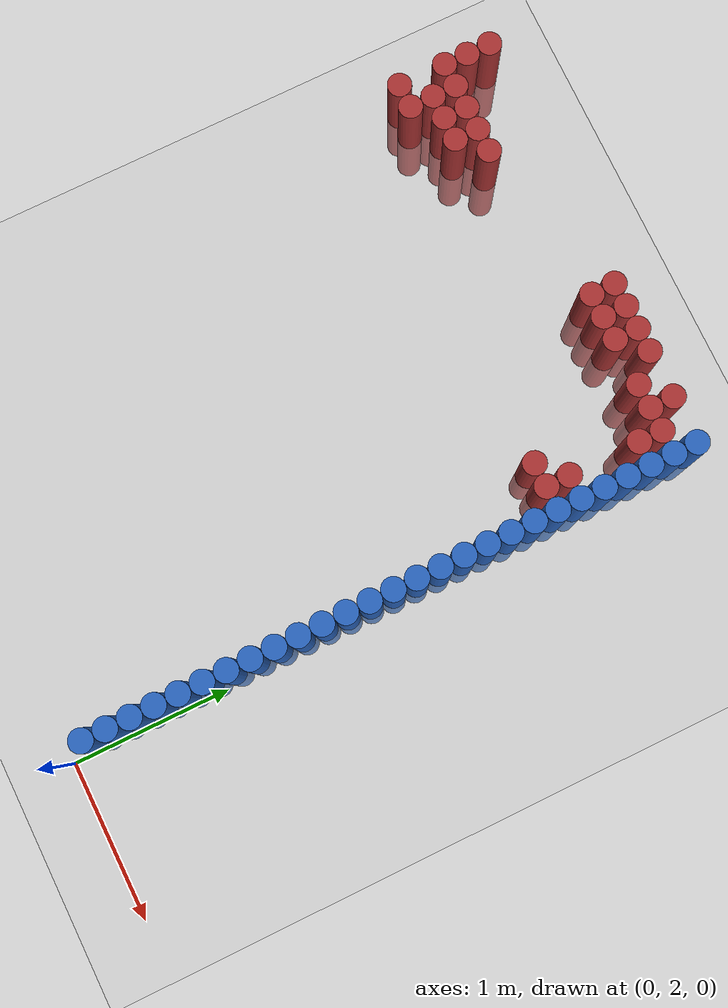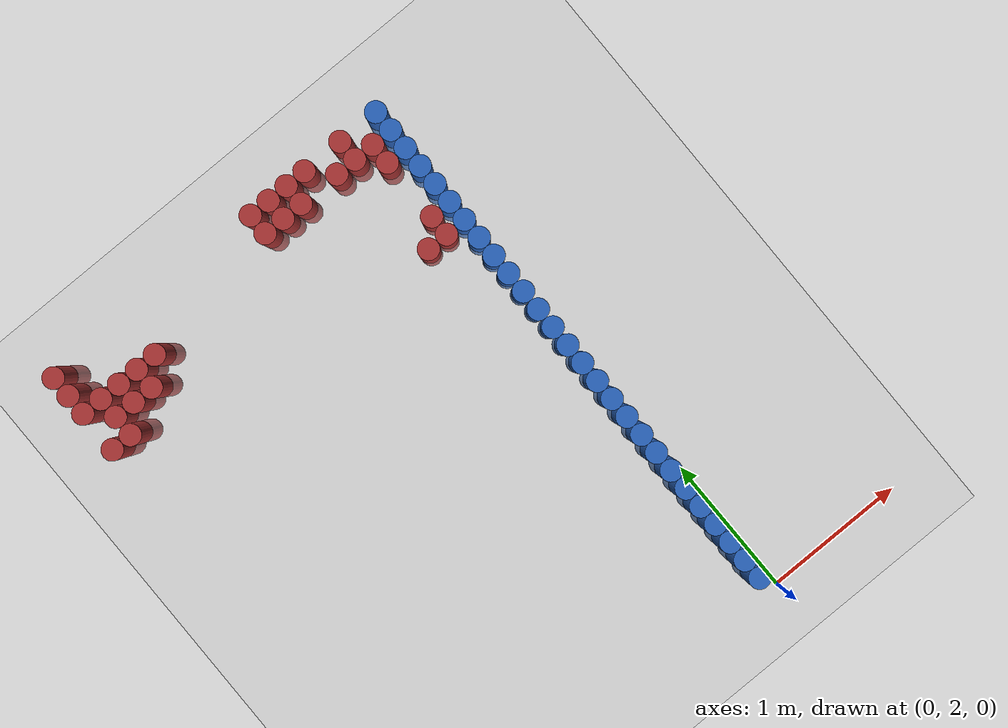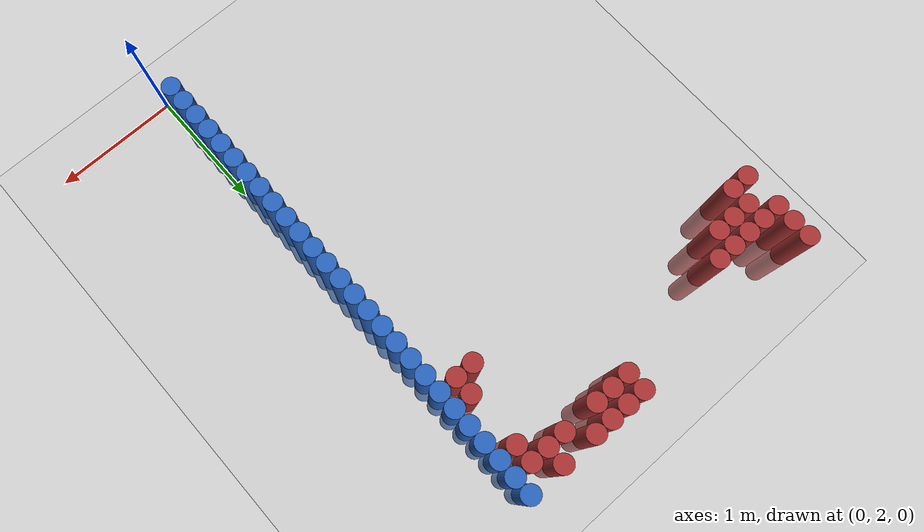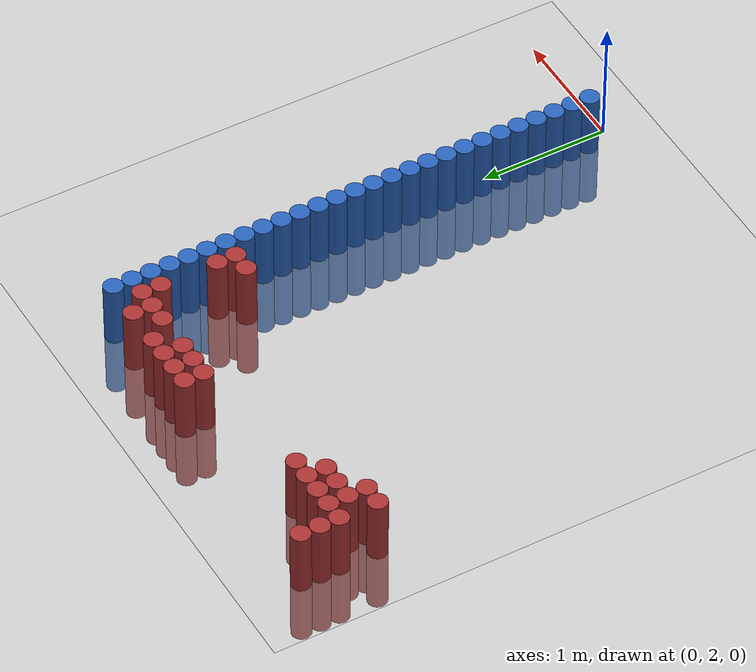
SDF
<sdf version="1.6">
 <world name="default">
  <model name="ground_plane">
   <static>1</static>
   <link name="link">
    <collision name="collision">
     <geometry><plane><normal>0 0 1</normal><size>100 100</size></plane></geometry>
     <surface><friction><ode><mu>100</mu><mu2>50</mu2></ode></friction></surface>
    </collision>
    <visual name="visual">
     <cast_shadows>0</cast_shadows>
     <geometry><plane><normal>0 0 1</normal><size>100 100</size></plane></geometry>
     <material>
      <script><uri>file://media/materials/scripts/gazebo.material</uri><name>Gazebo/Grey</name></script>
     </material>
    </visual>
   </link>
  </model>
  <model name="unit_cylinder_56">
   <static>1</static>
   <pose>-0.075000 2.175000 0.000000 0.000000 0.000000 0.000000</pose>
   <link name="link">
    <inertial>
     <mass>1</mass>
     <inertia><ixx>0.145833</ixx><ixy>0</ixy><ixz>0</ixz><iyy>0.145833</iyy><iyz>0</iyz><izz>0.125</izz></inertia>
    </inertial>
    <collision name="collision">
     <geometry><cylinder><radius>0.075000</radius><length>1</length></cylinder></geometry>
    </collision>
    <visual name="visual">
     <geometry><cylinder><radius>0.075000</radius><length>1</length></cylinder></geometry>
     <material>
      <ambient>0.152000 0.379000 0.720000 1</ambient>
      <diffuse>0.152000 0.379000 0.720000 1</diffuse>
     </material>
     <material>
      <script><name>Gazebo/Grey</name><uri>file://media/materials/scripts/gazebo.material</uri></script>
     </material>
    </visual>
   </link>
  </model>
  <model name="unit_cylinder_58">
   <static>1</static>
   <pose>-0.075000 2.325000 0.000000 0.000000 0.000000 0.000000</pose>
   <link name="link">
    <inertial>
     <mass>1</mass>
     <inertia><ixx>0.145833</ixx><ixy>0</ixy><ixz>0</ixz><iyy>0.145833</iyy><iyz>0</iyz><izz>0.125</izz></inertia>
    </inertial>
    <collision name="collision">
     <geometry><cylinder><radius>0.075000</radius><length>1</length></cylinder></geometry>
    </collision>
    <visual name="visual">
     <geometry><cylinder><radius>0.075000</radius><length>1</length></cylinder></geometry>
     <material>
      <ambient>0.152000 0.379000 0.720000 1</ambient>
      <diffuse>0.152000 0.379000 0.720000 1</diffuse>
     </material>
     <material>
      <script><name>Gazebo/Grey</name><uri>file://media/materials/scripts/gazebo.material</uri></script>
     </material>
    </visual>
   </link>
  </model>
  <model name="unit_cylinder_60">
   <static>1</static>
   <pose>-0.075000 2.475000 0.000000 0.000000 0.000000 0.000000</pose>
   <link name="link">
    <inertial>
     <mass>1</mass>
     <inertia><ixx>0.145833</ixx><ixy>0</ixy><ixz>0</ixz><iyy>0.145833</iyy><iyz>0</iyz><izz>0.125</izz></inertia>
    </inertial>
    <collision name="collision">
     <geometry><cylinder><radius>0.075000</radius><length>1</length></cylinder></geometry>
    </collision>
    <visual name="visual">
     <geometry><cylinder><radius>0.075000</radius><length>1</length></cylinder></geometry>
     <material>
      <ambient>0.152000 0.379000 0.720000 1</ambient>
      <diffuse>0.152000 0.379000 0.720000 1</diffuse>
     </material>
     <material>
      <script><name>Gazebo/Grey</name><uri>file://media/materials/scripts/gazebo.material</uri></script>
     </material>
    </visual>
   </link>
  </model>
  <model name="unit_cylinder_62">
   <static>1</static>
   <pose>-0.075000 2.625000 0.000000 0.000000 0.000000 0.000000</pose>
   <link name="link">
    <inertial>
     <mass>1</mass>
     <inertia><ixx>0.145833</ixx><ixy>0</ixy><ixz>0</ixz><iyy>0.145833</iyy><iyz>0</iyz><izz>0.125</izz></inertia>
    </inertial>
    <collision name="collision">
     <geometry><cylinder><radius>0.075000</radius><length>1</length></cylinder></geometry>
    </collision>
    <visual name="visual">
     <geometry><cylinder><radius>0.075000</radius><length>1</length></cylinder></geometry>
     <material>
      <ambient>0.152000 0.379000 0.720000 1</ambient>
      <diffuse>0.152000 0.379000 0.720000 1</diffuse>
     </material>
     <material>
      <script><name>Gazebo/Grey</name><uri>file://media/materials/scripts/gazebo.material</uri></script>
     </material>
    </visual>
   </link>
  </model>
  <model name="unit_cylinder_64">
   <static>1</static>
   <pose>-0.075000 2.775000 0.000000 0.000000 0.000000 0.000000</pose>
   <link name="link">
    <inertial>
     <mass>1</mass>
     <inertia><ixx>0.145833</ixx><ixy>0</ixy><ixz>0</ixz><iyy>0.145833</iyy><iyz>0</iyz><izz>0.125</izz></inertia>
    </inertial>
    <collision name="collision">
     <geometry><cylinder><radius>0.075000</radius><length>1</length></cylinder></geometry>
    </collision>
    <visual name="visual">
     <geometry><cylinder><radius>0.075000</radius><length>1</length></cylinder></geometry>
     <material>
      <ambient>0.152000 0.379000 0.720000 1</ambient>
      <diffuse>0.152000 0.379000 0.720000 1</diffuse>
     </material>
     <material>
      <script><name>Gazebo/Grey</name><uri>file://media/materials/scripts/gazebo.material</uri></script>
     </material>
    </visual>
   </link>
  </model>
  <model name="unit_cylinder_66">
   <static>1</static>
   <pose>-0.075000 2.925000 0.000000 0.000000 0.000000 0.000000</pose>
   <link name="link">
    <inertial>
     <mass>1</mass>
     <inertia><ixx>0.145833</ixx><ixy>0</ixy><ixz>0</ixz><iyy>0.145833</iyy><iyz>0</iyz><izz>0.125</izz></inertia>
    </inertial>
    <collision name="collision">
     <geometry><cylinder><radius>0.075000</radius><length>1</length></cylinder></geometry>
    </collision>
    <visual name="visual">
     <geometry><cylinder><radius>0.075000</radius><length>1</length></cylinder></geometry>
     <material>
      <ambient>0.152000 0.379000 0.720000 1</ambient>
      <diffuse>0.152000 0.379000 0.720000 1</diffuse>
     </material>
     <material>
      <script><name>Gazebo/Grey</name><uri>file://media/materials/scripts/gazebo.material</uri></script>
     </material>
    </visual>
   </link>
  </model>
  <model name="unit_cylinder_68">
   <static>1</static>
   <pose>-0.075000 3.075000 0.000000 0.000000 0.000000 0.000000</pose>
   <link name="link">
    <inertial>
     <mass>1</mass>
     <inertia><ixx>0.145833</ixx><ixy>0</ixy><ixz>0</ixz><iyy>0.145833</iyy><iyz>0</iyz><izz>0.125</izz></inertia>
    </inertial>
    <collision name="collision">
     <geometry><cylinder><radius>0.075000</radius><length>1</length></cylinder></geometry>
    </collision>
    <visual name="visual">
     <geometry><cylinder><radius>0.075000</radius><length>1</length></cylinder></geometry>
     <material>
      <ambient>0.152000 0.379000 0.720000 1</ambient>
      <diffuse>0.152000 0.379000 0.720000 1</diffuse>
     </material>
     <material>
      <script><name>Gazebo/Grey</name><uri>file://media/materials/scripts/gazebo.material</uri></script>
     </material>
    </visual>
   </link>
  </model>
  <model name="unit_cylinder_70">
   <static>1</static>
   <pose>-0.075000 3.225000 0.000000 0.000000 0.000000 0.000000</pose>
   <link name="link">
    <inertial>
     <mass>1</mass>
     <inertia><ixx>0.145833</ixx><ixy>0</ixy><ixz>0</ixz><iyy>0.145833</iyy><iyz>0</iyz><izz>0.125</izz></inertia>
    </inertial>
    <collision name="collision">
     <geometry><cylinder><radius>0.075000</radius><length>1</length></cylinder></geometry>
    </collision>
    <visual name="visual">
     <geometry><cylinder><radius>0.075000</radius><length>1</length></cylinder></geometry>
     <material>
      <ambient>0.152000 0.379000 0.720000 1</ambient>
      <diffuse>0.152000 0.379000 0.720000 1</diffuse>
     </material>
     <material>
      <script><name>Gazebo/Grey</name><uri>file://media/materials/scripts/gazebo.material</uri></script>
     </material>
    </visual>
   </link>
  </model>
  <model name="unit_cylinder_72">
   <static>1</static>
   <pose>-0.075000 3.375000 0.000000 0.000000 0.000000 0.000000</pose>
   <link name="link">
    <inertial>
     <mass>1</mass>
     <inertia><ixx>0.145833</ixx><ixy>0</ixy><ixz>0</ixz><iyy>0.145833</iyy><iyz>0</iyz><izz>0.125</izz></inertia>
    </inertial>
    <collision name="collision">
     <geometry><cylinder><radius>0.075000</radius><length>1</length></cylinder></geometry>
    </collision>
    <visual name="visual">
     <geometry><cylinder><radius>0.075000</radius><length>1</length></cylinder></geometry>
     <material>
      <ambient>0.152000 0.379000 0.720000 1</ambient>
      <diffuse>0.152000 0.379000 0.720000 1</diffuse>
     </material>
     <material>
      <script><name>Gazebo/Grey</name><uri>file://media/materials/scripts/gazebo.material</uri></script>
     </material>
    </visual>
   </link>
  </model>
  <model name="unit_cylinder_74">
   <static>1</static>
   <pose>-0.075000 3.525000 0.000000 0.000000 0.000000 0.000000</pose>
   <link name="link">
    <inertial>
     <mass>1</mass>
     <inertia><ixx>0.145833</ixx><ixy>0</ixy><ixz>0</ixz><iyy>0.145833</iyy><iyz>0</iyz><izz>0.125</izz></inertia>
    </inertial>
    <collision name="collision">
     <geometry><cylinder><radius>0.075000</radius><length>1</length></cylinder></geometry>
    </collision>
    <visual name="visual">
     <geometry><cylinder><radius>0.075000</radius><length>1</length></cylinder></geometry>
     <material>
      <ambient>0.152000 0.379000 0.720000 1</ambient>
      <diffuse>0.152000 0.379000 0.720000 1</diffuse>
     </material>
     <material>
      <script><name>Gazebo/Grey</name><uri>file://media/materials/scripts/gazebo.material</uri></script>
     </material>
    </visual>
   </link>
  </model>
  <model name="unit_cylinder_76">
   <static>1</static>
   <pose>-0.075000 3.675000 0.000000 0.000000 0.000000 0.000000</pose>
   <link name="link">
    <inertial>
     <mass>1</mass>
     <inertia><ixx>0.145833</ixx><ixy>0</ixy><ixz>0</ixz><iyy>0.145833</iyy><iyz>0</iyz><izz>0.125</izz></inertia>
    </inertial>
    <collision name="collision">
     <geometry><cylinder><radius>0.075000</radius><length>1</length></cylinder></geometry>
    </collision>
    <visual name="visual">
     <geometry><cylinder><radius>0.075000</radius><length>1</length></cylinder></geometry>
     <material>
      <ambient>0.152000 0.379000 0.720000 1</ambient>
      <diffuse>0.152000 0.379000 0.720000 1</diffuse>
     </material>
     <material>
      <script><name>Gazebo/Grey</name><uri>file://media/materials/scripts/gazebo.material</uri></script>
     </material>
    </visual>
   </link>
  </model>
  <model name="unit_cylinder_78">
   <static>1</static>
   <pose>-0.075000 3.825000 0.000000 0.000000 0.000000 0.000000</pose>
   <link name="link">
    <inertial>
     <mass>1</mass>
     <inertia><ixx>0.145833</ixx><ixy>0</ixy><ixz>0</ixz><iyy>0.145833</iyy><iyz>0</iyz><izz>0.125</izz></inertia>
    </inertial>
    <collision name="collision">
     <geometry><cylinder><radius>0.075000</radius><length>1</length></cylinder></geometry>
    </collision>
    <visual name="visual">
     <geometry><cylinder><radius>0.075000</radius><length>1</length></cylinder></geometry>
     <material>
      <ambient>0.152000 0.379000 0.720000 1</ambient>
      <diffuse>0.152000 0.379000 0.720000 1</diffuse>
     </material>
     <material>
      <script><name>Gazebo/Grey</name><uri>file://media/materials/scripts/gazebo.material</uri></script>
     </material>
    </visual>
   </link>
  </model>
  <model name="unit_cylinder_80">
   <static>1</static>
   <pose>-0.075000 3.975000 0.000000 0.000000 0.000000 0.000000</pose>
   <link name="link">
    <inertial>
     <mass>1</mass>
     <inertia><ixx>0.145833</ixx><ixy>0</ixy><ixz>0</ixz><iyy>0.145833</iyy><iyz>0</iyz><izz>0.125</izz></inertia>
    </inertial>
    <collision name="collision">
     <geometry><cylinder><radius>0.075000</radius><length>1</length></cylinder></geometry>
    </collision>
    <visual name="visual">
     <geometry><cylinder><radius>0.075000</radius><length>1</length></cylinder></geometry>
     <material>
      <ambient>0.152000 0.379000 0.720000 1</ambient>
      <diffuse>0.152000 0.379000 0.720000 1</diffuse>
     </material>
     <material>
      <script><name>Gazebo/Grey</name><uri>file://media/materials/scripts/gazebo.material</uri></script>
     </material>
    </visual>
   </link>
  </model>
  <model name="unit_cylinder_82">
   <static>1</static>
   <pose>-0.075000 4.125000 0.000000 0.000000 0.000000 0.000000</pose>
   <link name="link">
    <inertial>
     <mass>1</mass>
     <inertia><ixx>0.145833</ixx><ixy>0</ixy><ixz>0</ixz><iyy>0.145833</iyy><iyz>0</iyz><izz>0.125</izz></inertia>
    </inertial>
    <collision name="collision">
     <geometry><cylinder><radius>0.075000</radius><length>1</length></cylinder></geometry>
    </collision>
    <visual name="visual">
     <geometry><cylinder><radius>0.075000</radius><length>1</length></cylinder></geometry>
     <material>
      <ambient>0.152000 0.379000 0.720000 1</ambient>
      <diffuse>0.152000 0.379000 0.720000 1</diffuse>
     </material>
     <material>
      <script><name>Gazebo/Grey</name><uri>file://media/materials/scripts/gazebo.material</uri></script>
     </material>
    </visual>
   </link>
  </model>
  <model name="unit_cylinder_84">
   <static>1</static>
   <pose>-0.075000 4.275000 0.000000 0.000000 0.000000 0.000000</pose>
   <link name="link">
    <inertial>
     <mass>1</mass>
     <inertia><ixx>0.145833</ixx><ixy>0</ixy><ixz>0</ixz><iyy>0.145833</iyy><iyz>0</iyz><izz>0.125</izz></inertia>
    </inertial>
    <collision name="collision">
     <geometry><cylinder><radius>0.075000</radius><length>1</length></cylinder></geometry>
    </collision>
    <visual name="visual">
     <geometry><cylinder><radius>0.075000</radius><length>1</length></cylinder></geometry>
     <material>
      <ambient>0.152000 0.379000 0.720000 1</ambient>
      <diffuse>0.152000 0.379000 0.720000 1</diffuse>
     </material>
     <material>
      <script><name>Gazebo/Grey</name><uri>file://media/materials/scripts/gazebo.material</uri></script>
     </material>
    </visual>
   </link>
  </model>
  <model name="unit_cylinder_86">
   <static>1</static>
   <pose>-0.075000 4.425000 0.000000 0.000000 0.000000 0.000000</pose>
   <link name="link">
    <inertial>
     <mass>1</mass>
     <inertia><ixx>0.145833</ixx><ixy>0</ixy><ixz>0</ixz><iyy>0.145833</iyy><iyz>0</iyz><izz>0.125</izz></inertia>
    </inertial>
    <collision name="collision">
     <geometry><cylinder><radius>0.075000</radius><length>1</length></cylinder></geometry>
    </collision>
    <visual name="visual">
     <geometry><cylinder><radius>0.075000</radius><length>1</length></cylinder></geometry>
     <material>
      <ambient>0.152000 0.379000 0.720000 1</ambient>
      <diffuse>0.152000 0.379000 0.720000 1</diffuse>
     </material>
     <material>
      <script><name>Gazebo/Grey</name><uri>file://media/materials/scripts/gazebo.material</uri></script>
     </material>
    </visual>
   </link>
  </model>
  <model name="unit_cylinder_88">
   <static>1</static>
   <pose>-0.075000 4.575000 0.000000 0.000000 0.000000 0.000000</pose>
   <link name="link">
    <inertial>
     <mass>1</mass>
     <inertia><ixx>0.145833</ixx><ixy>0</ixy><ixz>0</ixz><iyy>0.145833</iyy><iyz>0</iyz><izz>0.125</izz></inertia>
    </inertial>
    <collision name="collision">
     <geometry><cylinder><radius>0.075000</radius><length>1</length></cylinder></geometry>
    </collision>
    <visual name="visual">
     <geometry><cylinder><radius>0.075000</radius><length>1</length></cylinder></geometry>
     <material>
      <ambient>0.152000 0.379000 0.720000 1</ambient>
      <diffuse>0.152000 0.379000 0.720000 1</diffuse>
     </material>
     <material>
      <script><name>Gazebo/Grey</name><uri>file://media/materials/scripts/gazebo.material</uri></script>
     </material>
    </visual>
   </link>
  </model>
  <model name="unit_cylinder_90">
   <static>1</static>
   <pose>-0.075000 4.725000 0.000000 0.000000 0.000000 0.000000</pose>
   <link name="link">
    <inertial>
     <mass>1</mass>
     <inertia><ixx>0.145833</ixx><ixy>0</ixy><ixz>0</ixz><iyy>0.145833</iyy><iyz>0</iyz><izz>0.125</izz></inertia>
    </inertial>
    <collision name="collision">
     <geometry><cylinder><radius>0.075000</radius><length>1</length></cylinder></geometry>
    </collision>
    <visual name="visual">
     <geometry><cylinder><radius>0.075000</radius><length>1</length></cylinder></geometry>
     <material>
      <ambient>0.152000 0.379000 0.720000 1</ambient>
      <diffuse>0.152000 0.379000 0.720000 1</diffuse>
     </material>
     <material>
      <script><name>Gazebo/Grey</name><uri>file://media/materials/scripts/gazebo.material</uri></script>
     </material>
    </visual>
   </link>
  </model>
  <model name="unit_cylinder_92">
   <static>1</static>
   <pose>-0.075000 4.875000 0.000000 0.000000 0.000000 0.000000</pose>
   <link name="link">
    <inertial>
     <mass>1</mass>
     <inertia><ixx>0.145833</ixx><ixy>0</ixy><ixz>0</ixz><iyy>0.145833</iyy><iyz>0</iyz><izz>0.125</izz></inertia>
    </inertial>
    <collision name="collision">
     <geometry><cylinder><radius>0.075000</radius><length>1</length></cylinder></geometry>
    </collision>
    <visual name="visual">
     <geometry><cylinder><radius>0.075000</radius><length>1</length></cylinder></geometry>
     <material>
      <ambient>0.152000 0.379000 0.720000 1</ambient>
      <diffuse>0.152000 0.379000 0.720000 1</diffuse>
     </material>
     <material>
      <script><name>Gazebo/Grey</name><uri>file://media/materials/scripts/gazebo.material</uri></script>
     </material>
    </visual>
   </link>
  </model>
  <model name="unit_cylinder_94">
   <static>1</static>
   <pose>-0.075000 5.025000 0.000000 0.000000 0.000000 0.000000</pose>
   <link name="link">
    <inertial>
     <mass>1</mass>
     <inertia><ixx>0.145833</ixx><ixy>0</ixy><ixz>0</ixz><iyy>0.145833</iyy><iyz>0</iyz><izz>0.125</izz></inertia>
    </inertial>
    <collision name="collision">
     <geometry><cylinder><radius>0.075000</radius><length>1</length></cylinder></geometry>
    </collision>
    <visual name="visual">
     <geometry><cylinder><radius>0.075000</radius><length>1</length></cylinder></geometry>
     <material>
      <ambient>0.152000 0.379000 0.720000 1</ambient>
      <diffuse>0.152000 0.379000 0.720000 1</diffuse>
     </material>
     <material>
      <script><name>Gazebo/Grey</name><uri>file://media/materials/scripts/gazebo.material</uri></script>
     </material>
    </visual>
   </link>
  </model>
  <model name="unit_cylinder_211">
   <static>1</static>
   <pose>-2.775000 5.475000 0.000000 0.000000 0.000000 0.000000</pose>
   <link name="link">
    <inertial>
     <mass>1</mass>
     <inertia><ixx>0.145833</ixx><ixy>0</ixy><ixz>0</ixz><iyy>0.145833</iyy><iyz>0</iyz><izz>0.125</izz></inertia>
    </inertial>
    <collision name="collision">
     <geometry><cylinder><radius>0.075000</radius><length>1</length></cylinder></geometry>
    </collision>
    <visual name="visual">
     <geometry><cylinder><radius>0.075000</radius><length>1</length></cylinder></geometry>
     <material>
      <ambient>0.648000 0.192000 0.192000 1</ambient>
      <diffuse>0.648000 0.192000 0.192000 1</diffuse>
     </material>
     <material>
      <script><name>Gazebo/Grey</name><uri>file://media/materials/scripts/gazebo.material</uri></script>
     </material>
    </visual>
   </link>
  </model>
  <model name="unit_cylinder_212">
   <static>1</static>
   <pose>-2.775000 5.775000 0.000000 0.000000 0.000000 0.000000</pose>
   <link name="link">
    <inertial>
     <mass>1</mass>
     <inertia><ixx>0.145833</ixx><ixy>0</ixy><ixz>0</ixz><iyy>0.145833</iyy><iyz>0</iyz><izz>0.125</izz></inertia>
    </inertial>
    <collision name="collision">
     <geometry><cylinder><radius>0.075000</radius><length>1</length></cylinder></geometry>
    </collision>
    <visual name="visual">
     <geometry><cylinder><radius>0.075000</radius><length>1</length></cylinder></geometry>
     <material>
      <ambient>0.648000 0.192000 0.192000 1</ambient>
      <diffuse>0.648000 0.192000 0.192000 1</diffuse>
     </material>
     <material>
      <script><name>Gazebo/Grey</name><uri>file://media/materials/scripts/gazebo.material</uri></script>
     </material>
    </visual>
   </link>
  </model>
  <model name="unit_cylinder_213">
   <static>1</static>
   <pose>-2.775000 5.925000 0.000000 0.000000 0.000000 0.000000</pose>
   <link name="link">
    <inertial>
     <mass>1</mass>
     <inertia><ixx>0.145833</ixx><ixy>0</ixy><ixz>0</ixz><iyy>0.145833</iyy><iyz>0</iyz><izz>0.125</izz></inertia>
    </inertial>
    <collision name="collision">
     <geometry><cylinder><radius>0.075000</radius><length>1</length></cylinder></geometry>
    </collision>
    <visual name="visual">
     <geometry><cylinder><radius>0.075000</radius><length>1</length></cylinder></geometry>
     <material>
      <ambient>0.648000 0.192000 0.192000 1</ambient>
      <diffuse>0.648000 0.192000 0.192000 1</diffuse>
     </material>
     <material>
      <script><name>Gazebo/Grey</name><uri>file://media/materials/scripts/gazebo.material</uri></script>
     </material>
    </visual>
   </link>
  </model>
  <model name="unit_cylinder_214">
   <static>1</static>
   <pose>-2.775000 6.075000 0.000000 0.000000 0.000000 0.000000</pose>
   <link name="link">
    <inertial>
     <mass>1</mass>
     <inertia><ixx>0.145833</ixx><ixy>0</ixy><ixz>0</ixz><iyy>0.145833</iyy><iyz>0</iyz><izz>0.125</izz></inertia>
    </inertial>
    <collision name="collision">
     <geometry><cylinder><radius>0.075000</radius><length>1</length></cylinder></geometry>
    </collision>
    <visual name="visual">
     <geometry><cylinder><radius>0.075000</radius><length>1</length></cylinder></geometry>
     <material>
      <ambient>0.648000 0.192000 0.192000 1</ambient>
      <diffuse>0.648000 0.192000 0.192000 1</diffuse>
     </material>
     <material>
      <script><name>Gazebo/Grey</name><uri>file://media/materials/scripts/gazebo.material</uri></script>
     </material>
    </visual>
   </link>
  </model>
  <model name="unit_cylinder_219">
   <static>1</static>
   <pose>-2.625000 5.475000 0.000000 0.000000 0.000000 0.000000</pose>
   <link name="link">
    <inertial>
     <mass>1</mass>
     <inertia><ixx>0.145833</ixx><ixy>0</ixy><ixz>0</ixz><iyy>0.145833</iyy><iyz>0</iyz><izz>0.125</izz></inertia>
    </inertial>
    <collision name="collision">
     <geometry><cylinder><radius>0.075000</radius><length>1</length></cylinder></geometry>
    </collision>
    <visual name="visual">
     <geometry><cylinder><radius>0.075000</radius><length>1</length></cylinder></geometry>
     <material>
      <ambient>0.648000 0.192000 0.192000 1</ambient>
      <diffuse>0.648000 0.192000 0.192000 1</diffuse>
     </material>
     <material>
      <script><name>Gazebo/Grey</name><uri>file://media/materials/scripts/gazebo.material</uri></script>
     </material>
    </visual>
   </link>
  </model>
  <model name="unit_cylinder_220">
   <static>1</static>
   <pose>-2.625000 5.625000 0.000000 0.000000 0.000000 0.000000</pose>
   <link name="link">
    <inertial>
     <mass>1</mass>
     <inertia><ixx>0.145833</ixx><ixy>0</ixy><ixz>0</ixz><iyy>0.145833</iyy><iyz>0</iyz><izz>0.125</izz></inertia>
    </inertial>
    <collision name="collision">
     <geometry><cylinder><radius>0.075000</radius><length>1</length></cylinder></geometry>
    </collision>
    <visual name="visual">
     <geometry><cylinder><radius>0.075000</radius><length>1</length></cylinder></geometry>
     <material>
      <ambient>0.648000 0.192000 0.192000 1</ambient>
      <diffuse>0.648000 0.192000 0.192000 1</diffuse>
     </material>
     <material>
      <script><name>Gazebo/Grey</name><uri>file://media/materials/scripts/gazebo.material</uri></script>
     </material>
    </visual>
   </link>
  </model>
  <model name="unit_cylinder_221">
   <static>1</static>
   <pose>-2.625000 5.775000 0.000000 0.000000 0.000000 0.000000</pose>
   <link name="link">
    <inertial>
     <mass>1</mass>
     <inertia><ixx>0.145833</ixx><ixy>0</ixy><ixz>0</ixz><iyy>0.145833</iyy><iyz>0</iyz><izz>0.125</izz></inertia>
    </inertial>
    <collision name="collision">
     <geometry><cylinder><radius>0.075000</radius><length>1</length></cylinder></geometry>
    </collision>
    <visual name="visual">
     <geometry><cylinder><radius>0.075000</radius><length>1</length></cylinder></geometry>
     <material>
      <ambient>0.648000 0.192000 0.192000 1</ambient>
      <diffuse>0.648000 0.192000 0.192000 1</diffuse>
     </material>
     <material>
      <script><name>Gazebo/Grey</name><uri>file://media/materials/scripts/gazebo.material</uri></script>
     </material>
    </visual>
   </link>
  </model>
  <model name="unit_cylinder_224">
   <static>1</static>
   <pose>-2.475000 5.625000 0.000000 0.000000 0.000000 0.000000</pose>
   <link name="link">
    <inertial>
     <mass>1</mass>
     <inertia><ixx>0.145833</ixx><ixy>0</ixy><ixz>0</ixz><iyy>0.145833</iyy><iyz>0</iyz><izz>0.125</izz></inertia>
    </inertial>
    <collision name="collision">
     <geometry><cylinder><radius>0.075000</radius><length>1</length></cylinder></geometry>
    </collision>
    <visual name="visual">
     <geometry><cylinder><radius>0.075000</radius><length>1</length></cylinder></geometry>
     <material>
      <ambient>0.648000 0.192000 0.192000 1</ambient>
      <diffuse>0.648000 0.192000 0.192000 1</diffuse>
     </material>
     <material>
      <script><name>Gazebo/Grey</name><uri>file://media/materials/scripts/gazebo.material</uri></script>
     </material>
    </visual>
   </link>
  </model>
  <model name="unit_cylinder_225">
   <static>1</static>
   <pose>-2.475000 5.775000 0.000000 0.000000 0.000000 0.000000</pose>
   <link name="link">
    <inertial>
     <mass>1</mass>
     <inertia><ixx>0.145833</ixx><ixy>0</ixy><ixz>0</ixz><iyy>0.145833</iyy><iyz>0</iyz><izz>0.125</izz></inertia>
    </inertial>
    <collision name="collision">
     <geometry><cylinder><radius>0.075000</radius><length>1</length></cylinder></geometry>
    </collision>
    <visual name="visual">
     <geometry><cylinder><radius>0.075000</radius><length>1</length></cylinder></geometry>
     <material>
      <ambient>0.648000 0.192000 0.192000 1</ambient>
      <diffuse>0.648000 0.192000 0.192000 1</diffuse>
     </material>
     <material>
      <script><name>Gazebo/Grey</name><uri>file://media/materials/scripts/gazebo.material</uri></script>
     </material>
    </visual>
   </link>
  </model>
  <model name="unit_cylinder_228">
   <static>1</static>
   <pose>-2.325000 5.625000 0.000000 0.000000 0.000000 0.000000</pose>
   <link name="link">
    <inertial>
     <mass>1</mass>
     <inertia><ixx>0.145833</ixx><ixy>0</ixy><ixz>0</ixz><iyy>0.145833</iyy><iyz>0</iyz><izz>0.125</izz></inertia>
    </inertial>
    <collision name="collision">
     <geometry><cylinder><radius>0.075000</radius><length>1</length></cylinder></geometry>
    </collision>
    <visual name="visual">
     <geometry><cylinder><radius>0.075000</radius><length>1</length></cylinder></geometry>
     <material>
      <ambient>0.648000 0.192000 0.192000 1</ambient>
      <diffuse>0.648000 0.192000 0.192000 1</diffuse>
     </material>
     <material>
      <script><name>Gazebo/Grey</name><uri>file://media/materials/scripts/gazebo.material</uri></script>
     </material>
    </visual>
   </link>
  </model>
  <model name="unit_cylinder_229">
   <static>1</static>
   <pose>-2.325000 5.775000 0.000000 0.000000 0.000000 0.000000</pose>
   <link name="link">
    <inertial>
     <mass>1</mass>
     <inertia><ixx>0.145833</ixx><ixy>0</ixy><ixz>0</ixz><iyy>0.145833</iyy><iyz>0</iyz><izz>0.125</izz></inertia>
    </inertial>
    <collision name="collision">
     <geometry><cylinder><radius>0.075000</radius><length>1</length></cylinder></geometry>
    </collision>
    <visual name="visual">
     <geometry><cylinder><radius>0.075000</radius><length>1</length></cylinder></geometry>
     <material>
      <ambient>0.648000 0.192000 0.192000 1</ambient>
      <diffuse>0.648000 0.192000 0.192000 1</diffuse>
     </material>
     <material>
      <script><name>Gazebo/Grey</name><uri>file://media/materials/scripts/gazebo.material</uri></script>
     </material>
    </visual>
   </link>
  </model>
  <model name="unit_cylinder_236">
   <static>1</static>
   <pose>-2.175000 5.775000 0.000000 0.000000 0.000000 0.000000</pose>
   <link name="link">
    <inertial>
     <mass>1</mass>
     <inertia><ixx>0.145833</ixx><ixy>0</ixy><ixz>0</ixz><iyy>0.145833</iyy><iyz>0</iyz><izz>0.125</izz></inertia>
    </inertial>
    <collision name="collision">
     <geometry><cylinder><radius>0.075000</radius><length>1</length></cylinder></geometry>
    </collision>
    <visual name="visual">
     <geometry><cylinder><radius>0.075000</radius><length>1</length></cylinder></geometry>
     <material>
      <ambient>0.648000 0.192000 0.192000 1</ambient>
      <diffuse>0.648000 0.192000 0.192000 1</diffuse>
     </material>
     <material>
      <script><name>Gazebo/Grey</name><uri>file://media/materials/scripts/gazebo.material</uri></script>
     </material>
    </visual>
   </link>
  </model>
  <model name="unit_cylinder_278">
   <static>1</static>
   <pose>-1.125000 5.925000 0.000000 0.000000 0.000000 0.000000</pose>
   <link name="link">
    <inertial>
     <mass>1</mass>
     <inertia><ixx>0.145833</ixx><ixy>0</ixy><ixz>0</ixz><iyy>0.145833</iyy><iyz>0</iyz><izz>0.125</izz></inertia>
    </inertial>
    <collision name="collision">
     <geometry><cylinder><radius>0.075000</radius><length>1</length></cylinder></geometry>
    </collision>
    <visual name="visual">
     <geometry><cylinder><radius>0.075000</radius><length>1</length></cylinder></geometry>
     <material>
      <ambient>0.648000 0.192000 0.192000 1</ambient>
      <diffuse>0.648000 0.192000 0.192000 1</diffuse>
     </material>
     <material>
      <script><name>Gazebo/Grey</name><uri>file://media/materials/scripts/gazebo.material</uri></script>
     </material>
    </visual>
   </link>
  </model>
  <model name="unit_cylinder_279">
   <static>1</static>
   <pose>-1.125000 6.075000 0.000000 0.000000 0.000000 0.000000</pose>
   <link name="link">
    <inertial>
     <mass>1</mass>
     <inertia><ixx>0.145833</ixx><ixy>0</ixy><ixz>0</ixz><iyy>0.145833</iyy><iyz>0</iyz><izz>0.125</izz></inertia>
    </inertial>
    <collision name="collision">
     <geometry><cylinder><radius>0.075000</radius><length>1</length></cylinder></geometry>
    </collision>
    <visual name="visual">
     <geometry><cylinder><radius>0.075000</radius><length>1</length></cylinder></geometry>
     <material>
      <ambient>0.648000 0.192000 0.192000 1</ambient>
      <diffuse>0.648000 0.192000 0.192000 1</diffuse>
     </material>
     <material>
      <script><name>Gazebo/Grey</name><uri>file://media/materials/scripts/gazebo.material</uri></script>
     </material>
    </visual>
   </link>
  </model>
  <model name="unit_cylinder_284">
   <static>1</static>
   <pose>-0.975000 5.925000 0.000000 0.000000 0.000000 0.000000</pose>
   <link name="link">
    <inertial>
     <mass>1</mass>
     <inertia><ixx>0.145833</ixx><ixy>0</ixy><ixz>0</ixz><iyy>0.145833</iyy><iyz>0</iyz><izz>0.125</izz></inertia>
    </inertial>
    <collision name="collision">
     <geometry><cylinder><radius>0.075000</radius><length>1</length></cylinder></geometry>
    </collision>
    <visual name="visual">
     <geometry><cylinder><radius>0.075000</radius><length>1</length></cylinder></geometry>
     <material>
      <ambient>0.648000 0.192000 0.192000 1</ambient>
      <diffuse>0.648000 0.192000 0.192000 1</diffuse>
     </material>
     <material>
      <script><name>Gazebo/Grey</name><uri>file://media/materials/scripts/gazebo.material</uri></script>
     </material>
    </visual>
   </link>
  </model>
  <model name="unit_cylinder_285">
   <static>1</static>
   <pose>-0.975000 6.075000 0.000000 0.000000 0.000000 0.000000</pose>
   <link name="link">
    <inertial>
     <mass>1</mass>
     <inertia><ixx>0.145833</ixx><ixy>0</ixy><ixz>0</ixz><iyy>0.145833</iyy><iyz>0</iyz><izz>0.125</izz></inertia>
    </inertial>
    <collision name="collision">
     <geometry><cylinder><radius>0.075000</radius><length>1</length></cylinder></geometry>
    </collision>
    <visual name="visual">
     <geometry><cylinder><radius>0.075000</radius><length>1</length></cylinder></geometry>
     <material>
      <ambient>0.648000 0.192000 0.192000 1</ambient>
      <diffuse>0.648000 0.192000 0.192000 1</diffuse>
     </material>
     <material>
      <script><name>Gazebo/Grey</name><uri>file://media/materials/scripts/gazebo.material</uri></script>
     </material>
    </visual>
   </link>
  </model>
  <model name="unit_cylinder_292">
   <static>1</static>
   <pose>-0.825000 5.925000 0.000000 0.000000 0.000000 0.000000</pose>
   <link name="link">
    <inertial>
     <mass>1</mass>
     <inertia><ixx>0.145833</ixx><ixy>0</ixy><ixz>0</ixz><iyy>0.145833</iyy><iyz>0</iyz><izz>0.125</izz></inertia>
    </inertial>
    <collision name="collision">
     <geometry><cylinder><radius>0.075000</radius><length>1</length></cylinder></geometry>
    </collision>
    <visual name="visual">
     <geometry><cylinder><radius>0.075000</radius><length>1</length></cylinder></geometry>
     <material>
      <ambient>0.648000 0.192000 0.192000 1</ambient>
      <diffuse>0.648000 0.192000 0.192000 1</diffuse>
     </material>
     <material>
      <script><name>Gazebo/Grey</name><uri>file://media/materials/scripts/gazebo.material</uri></script>
     </material>
    </visual>
   </link>
  </model>
  <model name="unit_cylinder_293">
   <static>1</static>
   <pose>-0.825000 6.075000 0.000000 0.000000 0.000000 0.000000</pose>
   <link name="link">
    <inertial>
     <mass>1</mass>
     <inertia><ixx>0.145833</ixx><ixy>0</ixy><ixz>0</ixz><iyy>0.145833</iyy><iyz>0</iyz><izz>0.125</izz></inertia>
    </inertial>
    <collision name="collision">
     <geometry><cylinder><radius>0.075000</radius><length>1</length></cylinder></geometry>
    </collision>
    <visual name="visual">
     <geometry><cylinder><radius>0.075000</radius><length>1</length></cylinder></geometry>
     <material>
      <ambient>0.648000 0.192000 0.192000 1</ambient>
      <diffuse>0.648000 0.192000 0.192000 1</diffuse>
     </material>
     <material>
      <script><name>Gazebo/Grey</name><uri>file://media/materials/scripts/gazebo.material</uri></script>
     </material>
    </visual>
   </link>
  </model>
  <model name="unit_cylinder_302">
   <static>1</static>
   <pose>-0.675000 6.075000 0.000000 0.000000 0.000000 0.000000</pose>
   <link name="link">
    <inertial>
     <mass>1</mass>
     <inertia><ixx>0.145833</ixx><ixy>0</ixy><ixz>0</ixz><iyy>0.145833</iyy><iyz>0</iyz><izz>0.125</izz></inertia>
    </inertial>
    <collision name="collision">
     <geometry><cylinder><radius>0.075000</radius><length>1</length></cylinder></geometry>
    </collision>
    <visual name="visual">
     <geometry><cylinder><radius>0.075000</radius><length>1</length></cylinder></geometry>
     <material>
      <ambient>0.648000 0.192000 0.192000 1</ambient>
      <diffuse>0.648000 0.192000 0.192000 1</diffuse>
     </material>
     <material>
      <script><name>Gazebo/Grey</name><uri>file://media/materials/scripts/gazebo.material</uri></script>
     </material>
    </visual>
   </link>
  </model>
  <model name="unit_cylinder_309">
   <static>1</static>
   <pose>-0.525000 5.925000 0.000000 0.000000 0.000000 0.000000</pose>
   <link name="link">
    <inertial>
     <mass>1</mass>
     <inertia><ixx>0.145833</ixx><ixy>0</ixy><ixz>0</ixz><iyy>0.145833</iyy><iyz>0</iyz><izz>0.125</izz></inertia>
    </inertial>
    <collision name="collision">
     <geometry><cylinder><radius>0.075000</radius><length>1</length></cylinder></geometry>
    </collision>
    <visual name="visual">
     <geometry><cylinder><radius>0.075000</radius><length>1</length></cylinder></geometry>
     <material>
      <ambient>0.648000 0.192000 0.192000 1</ambient>
      <diffuse>0.648000 0.192000 0.192000 1</diffuse>
     </material>
     <material>
      <script><name>Gazebo/Grey</name><uri>file://media/materials/scripts/gazebo.material</uri></script>
     </material>
    </visual>
   </link>
  </model>
  <model name="unit_cylinder_317">
   <static>1</static>
   <pose>-0.375000 5.175000 0.000000 0.000000 0.000000 0.000000</pose>
   <link name="link">
    <inertial>
     <mass>1</mass>
     <inertia><ixx>0.145833</ixx><ixy>0</ixy><ixz>0</ixz><iyy>0.145833</iyy><iyz>0</iyz><izz>0.125</izz></inertia>
    </inertial>
    <collision name="collision">
     <geometry><cylinder><radius>0.075000</radius><length>1</length></cylinder></geometry>
    </collision>
    <visual name="visual">
     <geometry><cylinder><radius>0.075000</radius><length>1</length></cylinder></geometry>
     <material>
      <ambient>0.648000 0.192000 0.192000 1</ambient>
      <diffuse>0.648000 0.192000 0.192000 1</diffuse>
     </material>
     <material>
      <script><name>Gazebo/Grey</name><uri>file://media/materials/scripts/gazebo.material</uri></script>
     </material>
    </visual>
   </link>
  </model>
  <model name="unit_cylinder_318">
   <static>1</static>
   <pose>-0.375000 5.925000 0.000000 0.000000 0.000000 0.000000</pose>
   <link name="link">
    <inertial>
     <mass>1</mass>
     <inertia><ixx>0.145833</ixx><ixy>0</ixy><ixz>0</ixz><iyy>0.145833</iyy><iyz>0</iyz><izz>0.125</izz></inertia>
    </inertial>
    <collision name="collision">
     <geometry><cylinder><radius>0.075000</radius><length>1</length></cylinder></geometry>
    </collision>
    <visual name="visual">
     <geometry><cylinder><radius>0.075000</radius><length>1</length></cylinder></geometry>
     <material>
      <ambient>0.648000 0.192000 0.192000 1</ambient>
      <diffuse>0.648000 0.192000 0.192000 1</diffuse>
     </material>
     <material>
      <script><name>Gazebo/Grey</name><uri>file://media/materials/scripts/gazebo.material</uri></script>
     </material>
    </visual>
   </link>
  </model>
  <model name="unit_cylinder_319">
   <static>1</static>
   <pose>-0.375000 6.075000 0.000000 0.000000 0.000000 0.000000</pose>
   <link name="link">
    <inertial>
     <mass>1</mass>
     <inertia><ixx>0.145833</ixx><ixy>0</ixy><ixz>0</ixz><iyy>0.145833</iyy><iyz>0</iyz><izz>0.125</izz></inertia>
    </inertial>
    <collision name="collision">
     <geometry><cylinder><radius>0.075000</radius><length>1</length></cylinder></geometry>
    </collision>
    <visual name="visual">
     <geometry><cylinder><radius>0.075000</radius><length>1</length></cylinder></geometry>
     <material>
      <ambient>0.648000 0.192000 0.192000 1</ambient>
      <diffuse>0.648000 0.192000 0.192000 1</diffuse>
     </material>
     <material>
      <script><name>Gazebo/Grey</name><uri>file://media/materials/scripts/gazebo.material</uri></script>
     </material>
    </visual>
   </link>
  </model>
  <model name="unit_cylinder_335">
   <static>1</static>
   <pose>-0.225000 5.175000 0.000000 0.000000 0.000000 0.000000</pose>
   <link name="link">
    <inertial>
     <mass>1</mass>
     <inertia><ixx>0.145833</ixx><ixy>0</ixy><ixz>0</ixz><iyy>0.145833</iyy><iyz>0</iyz><izz>0.125</izz></inertia>
    </inertial>
    <collision name="collision">
     <geometry><cylinder><radius>0.075000</radius><length>1</length></cylinder></geometry>
    </collision>
    <visual name="visual">
     <geometry><cylinder><radius>0.075000</radius><length>1</length></cylinder></geometry>
     <material>
      <ambient>0.648000 0.192000 0.192000 1</ambient>
      <diffuse>0.648000 0.192000 0.192000 1</diffuse>
     </material>
     <material>
      <script><name>Gazebo/Grey</name><uri>file://media/materials/scripts/gazebo.material</uri></script>
     </material>
    </visual>
   </link>
  </model>
  <model name="unit_cylinder_336">
   <static>1</static>
   <pose>-0.225000 5.325000 0.000000 0.000000 0.000000 0.000000</pose>
   <link name="link">
    <inertial>
     <mass>1</mass>
     <inertia><ixx>0.145833</ixx><ixy>0</ixy><ixz>0</ixz><iyy>0.145833</iyy><iyz>0</iyz><izz>0.125</izz></inertia>
    </inertial>
    <collision name="collision">
     <geometry><cylinder><radius>0.075000</radius><length>1</length></cylinder></geometry>
    </collision>
    <visual name="visual">
     <geometry><cylinder><radius>0.075000</radius><length>1</length></cylinder></geometry>
     <material>
      <ambient>0.648000 0.192000 0.192000 1</ambient>
      <diffuse>0.648000 0.192000 0.192000 1</diffuse>
     </material>
     <material>
      <script><name>Gazebo/Grey</name><uri>file://media/materials/scripts/gazebo.material</uri></script>
     </material>
    </visual>
   </link>
  </model>
  <model name="unit_cylinder_337">
   <static>1</static>
   <pose>-0.225000 5.775000 0.000000 0.000000 0.000000 0.000000</pose>
   <link name="link">
    <inertial>
     <mass>1</mass>
     <inertia><ixx>0.145833</ixx><ixy>0</ixy><ixz>0</ixz><iyy>0.145833</iyy><iyz>0</iyz><izz>0.125</izz></inertia>
    </inertial>
    <collision name="collision">
     <geometry><cylinder><radius>0.075000</radius><length>1</length></cylinder></geometry>
    </collision>
    <visual name="visual">
     <geometry><cylinder><radius>0.075000</radius><length>1</length></cylinder></geometry>
     <material>
      <ambient>0.648000 0.192000 0.192000 1</ambient>
      <diffuse>0.648000 0.192000 0.192000 1</diffuse>
     </material>
     <material>
      <script><name>Gazebo/Grey</name><uri>file://media/materials/scripts/gazebo.material</uri></script>
     </material>
    </visual>
   </link>
  </model>
  <model name="unit_cylinder_338">
   <static>1</static>
   <pose>-0.225000 5.925000 0.000000 0.000000 0.000000 0.000000</pose>
   <link name="link">
    <inertial>
     <mass>1</mass>
     <inertia><ixx>0.145833</ixx><ixy>0</ixy><ixz>0</ixz><iyy>0.145833</iyy><iyz>0</iyz><izz>0.125</izz></inertia>
    </inertial>
    <collision name="collision">
     <geometry><cylinder><radius>0.075000</radius><length>1</length></cylinder></geometry>
    </collision>
    <visual name="visual">
     <geometry><cylinder><radius>0.075000</radius><length>1</length></cylinder></geometry>
     <material>
      <ambient>0.648000 0.192000 0.192000 1</ambient>
      <diffuse>0.648000 0.192000 0.192000 1</diffuse>
     </material>
     <material>
      <script><name>Gazebo/Grey</name><uri>file://media/materials/scripts/gazebo.material</uri></script>
     </material>
    </visual>
   </link>
  </model>
  <model name="unit_cylinder_352">
   <static>1</static>
   <pose>-0.075000 5.175000 0.000000 0.000000 0.000000 0.000000</pose>
   <link name="link">
    <inertial>
     <mass>1</mass>
     <inertia><ixx>0.145833</ixx><ixy>0</ixy><ixz>0</ixz><iyy>0.145833</iyy><iyz>0</iyz><izz>0.125</izz></inertia>
    </inertial>
    <collision name="collision">
     <geometry><cylinder><radius>0.075000</radius><length>1</length></cylinder></geometry>
    </collision>
    <visual name="visual">
     <geometry><cylinder><radius>0.075000</radius><length>1</length></cylinder></geometry>
     <material>
      <ambient>0.152000 0.379000 0.720000 1</ambient>
      <diffuse>0.152000 0.379000 0.720000 1</diffuse>
     </material>
     <material>
      <script><name>Gazebo/Grey</name><uri>file://media/materials/scripts/gazebo.material</uri></script>
     </material>
    </visual>
   </link>
  </model>
  <model name="unit_cylinder_353">
   <static>1</static>
   <pose>-0.075000 5.325000 0.000000 0.000000 0.000000 0.000000</pose>
   <link name="link">
    <inertial>
     <mass>1</mass>
     <inertia><ixx>0.145833</ixx><ixy>0</ixy><ixz>0</ixz><iyy>0.145833</iyy><iyz>0</iyz><izz>0.125</izz></inertia>
    </inertial>
    <collision name="collision">
     <geometry><cylinder><radius>0.075000</radius><length>1</length></cylinder></geometry>
    </collision>
    <visual name="visual">
     <geometry><cylinder><radius>0.075000</radius><length>1</length></cylinder></geometry>
     <material>
      <ambient>0.152000 0.379000 0.720000 1</ambient>
      <diffuse>0.152000 0.379000 0.720000 1</diffuse>
     </material>
     <material>
      <script><name>Gazebo/Grey</name><uri>file://media/materials/scripts/gazebo.material</uri></script>
     </material>
    </visual>
   </link>
  </model>
  <model name="unit_cylinder_354">
   <static>1</static>
   <pose>-0.075000 5.475000 0.000000 0.000000 0.000000 0.000000</pose>
   <link name="link">
    <inertial>
     <mass>1</mass>
     <inertia><ixx>0.145833</ixx><ixy>0</ixy><ixz>0</ixz><iyy>0.145833</iyy><iyz>0</iyz><izz>0.125</izz></inertia>
    </inertial>
    <collision name="collision">
     <geometry><cylinder><radius>0.075000</radius><length>1</length></cylinder></geometry>
    </collision>
    <visual name="visual">
     <geometry><cylinder><radius>0.075000</radius><length>1</length></cylinder></geometry>
     <material>
      <ambient>0.152000 0.379000 0.720000 1</ambient>
      <diffuse>0.152000 0.379000 0.720000 1</diffuse>
     </material>
     <material>
      <script><name>Gazebo/Grey</name><uri>file://media/materials/scripts/gazebo.material</uri></script>
     </material>
    </visual>
   </link>
  </model>
  <model name="unit_cylinder_355">
   <static>1</static>
   <pose>-0.075000 5.625000 0.000000 0.000000 0.000000 0.000000</pose>
   <link name="link">
    <inertial>
     <mass>1</mass>
     <inertia><ixx>0.145833</ixx><ixy>0</ixy><ixz>0</ixz><iyy>0.145833</iyy><iyz>0</iyz><izz>0.125</izz></inertia>
    </inertial>
    <collision name="collision">
     <geometry><cylinder><radius>0.075000</radius><length>1</length></cylinder></geometry>
    </collision>
    <visual name="visual">
     <geometry><cylinder><radius>0.075000</radius><length>1</length></cylinder></geometry>
     <material>
      <ambient>0.152000 0.379000 0.720000 1</ambient>
      <diffuse>0.152000 0.379000 0.720000 1</diffuse>
     </material>
     <material>
      <script><name>Gazebo/Grey</name><uri>file://media/materials/scripts/gazebo.material</uri></script>
     </material>
    </visual>
   </link>
  </model>
  <model name="unit_cylinder_356">
   <static>1</static>
   <pose>-0.075000 5.775000 0.000000 0.000000 0.000000 0.000000</pose>
   <link name="link">
    <inertial>
     <mass>1</mass>
     <inertia><ixx>0.145833</ixx><ixy>0</ixy><ixz>0</ixz><iyy>0.145833</iyy><iyz>0</iyz><izz>0.125</izz></inertia>
    </inertial>
    <collision name="collision">
     <geometry><cylinder><radius>0.075000</radius><length>1</length></cylinder></geometry>
    </collision>
    <visual name="visual">
     <geometry><cylinder><radius>0.075000</radius><length>1</length></cylinder></geometry>
     <material>
      <ambient>0.152000 0.379000 0.720000 1</ambient>
      <diffuse>0.152000 0.379000 0.720000 1</diffuse>
     </material>
     <material>
      <script><name>Gazebo/Grey</name><uri>file://media/materials/scripts/gazebo.material</uri></script>
     </material>
    </visual>
   </link>
  </model>
  <model name="unit_cylinder_357">
   <static>1</static>
   <pose>-0.075000 5.925000 0.000000 0.000000 0.000000 0.000000</pose>
   <link name="link">
    <inertial>
     <mass>1</mass>
     <inertia><ixx>0.145833</ixx><ixy>0</ixy><ixz>0</ixz><iyy>0.145833</iyy><iyz>0</iyz><izz>0.125</izz></inertia>
    </inertial>
    <collision name="collision">
     <geometry><cylinder><radius>0.075000</radius><length>1</length></cylinder></geometry>
    </collision>
    <visual name="visual">
     <geometry><cylinder><radius>0.075000</radius><length>1</length></cylinder></geometry>
     <material>
      <ambient>0.152000 0.379000 0.720000 1</ambient>
      <diffuse>0.152000 0.379000 0.720000 1</diffuse>
     </material>
     <material>
      <script><name>Gazebo/Grey</name><uri>file://media/materials/scripts/gazebo.material</uri></script>
     </material>
    </visual>
   </link>
  </model>
  <model name="unit_cylinder_358">
   <static>1</static>
   <pose>-0.075000 6.075000 0.000000 0.000000 0.000000 0.000000</pose>
   <link name="link">
    <inertial>
     <mass>1</mass>
     <inertia><ixx>0.145833</ixx><ixy>0</ixy><ixz>0</ixz><iyy>0.145833</iyy><iyz>0</iyz><izz>0.125</izz></inertia>
    </inertial>
    <collision name="collision">
     <geometry><cylinder><radius>0.075000</radius><length>1</length></cylinder></geometry>
    </collision>
    <visual name="visual">
     <geometry><cylinder><radius>0.075000</radius><length>1</length></cylinder></geometry>
     <material>
      <ambient>0.152000 0.379000 0.720000 1</ambient>
      <diffuse>0.152000 0.379000 0.720000 1</diffuse>
     </material>
     <material>
      <script><name>Gazebo/Grey</name><uri>file://media/materials/scripts/gazebo.material</uri></script>
     </material>
    </visual>
   </link>
  </model>
 </world>
</sdf>
